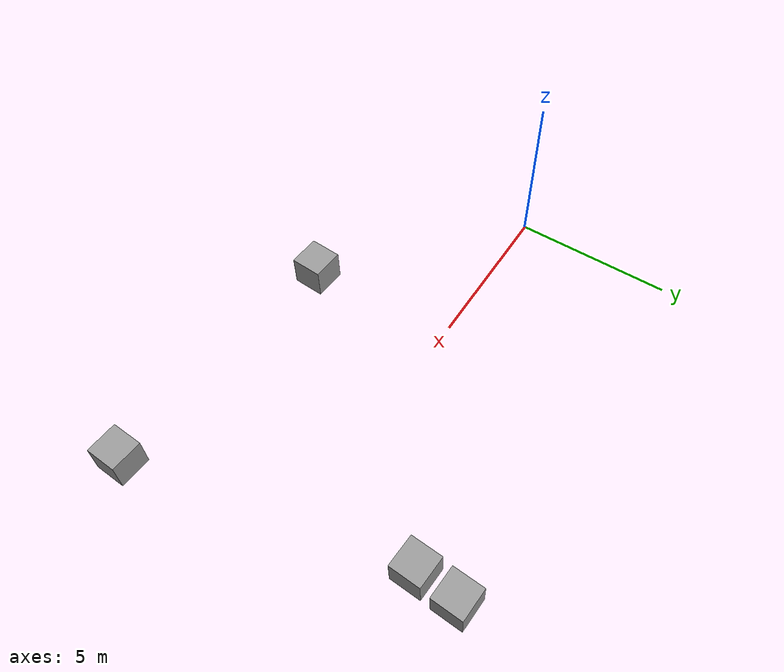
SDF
<sdf version="1.6">
 <world name="default">
  <light name="sun" type="directional">
   <cast_shadows>0</cast_shadows>
   <pose>0 0 10 0 -0 0</pose>
   <diffuse>0.8 0.8 0.8 1</diffuse>
   <specular>0.1 0.1 0.1 1</specular>
   <attenuation>
    <range>1000</range>
    <constant>0.9</constant>
    <linear>0.01</linear>
    <quadratic>0.001</quadratic>
   </attenuation>
   <direction>-0.5 0.5 -1</direction>
  </light>
  <gravity>0 0 -9.8</gravity>
  <magnetic_field>6e-06 2.3e-05 -4.2e-05</magnetic_field>
  <atmosphere type="adiabatic"/>
  <physics name="default_physics" default="0" type="ode">
   <max_step_size>0.001</max_step_size>
   <real_time_factor>1</real_time_factor>
   <real_time_update_rate>1000</real_time_update_rate>
  </physics>
  <scene><ambient>0.4 0.4 0.4 1</ambient><background>0.7 0.7 0.7 1</background><shadows>1</shadows></scene>
  <spherical_coordinates>
   <surface_model>EARTH_WGS84</surface_model>
   <latitude_deg>0</latitude_deg>
   <longitude_deg>0</longitude_deg>
   <elevation>0</elevation>
   <heading_deg>0</heading_deg>
  </spherical_coordinates>
  <model name="unit_box_clone">
   <pose>12.3591 4.69398 0.525937 4e-05 0.053278 -0.058172</pose>
   <link name="link">
    <inertial>
     <mass>1</mass>
     <inertia>
      <ixx>0.166667</ixx>
      <ixy>0</ixy>
      <ixz>0</ixz>
      <iyy>0.166667</iyy>
      <iyz>0</iyz>
      <izz>0.166667</izz>
     </inertia>
    </inertial>
    <collision name="collision"><geometry><box><size>1 1 1</size></box></geometry></collision>
    <visual name="visual">
     <geometry><box><size>1 1 1</size></box></geometry>
     <material>
      <script><name>Gazebo/Grey</name><uri>file://media/materials/scripts/gazebo.material</uri></script>
     </material>
    </visual>
   </link>
  </model>
  <model name="unit_box_clone_clone">
   <pose>12.2402 3.37685 0.513268 -3.8e-05 0.026883 -0.057384</pose>
   <link name="link">
    <inertial>
     <mass>1</mass>
     <inertia>
      <ixx>0.166667</ixx>
      <ixy>0</ixy>
      <ixz>0</ixz>
      <iyy>0.166667</iyy>
      <iyz>0</iyz>
      <izz>0.166667</izz>
     </inertia>
    </inertial>
    <collision name="collision"><geometry><box><size>1 1 1</size></box></geometry></collision>
    <visual name="visual">
     <geometry><box><size>1 1 1</size></box></geometry>
     <material>
      <script><name>Gazebo/Grey</name><uri>file://media/materials/scripts/gazebo.material</uri></script>
     </material>
    </visual>
   </link>
  </model>
  <model name="unit_box_clone_clone_0">
   <pose>5.56504 -4.6353 0.500006 -5e-06 -6e-06 -0.058584</pose>
   <link name="link">
    <inertial>
     <mass>1</mass>
     <inertia>
      <ixx>0.166667</ixx>
      <ixy>0</ixy>
      <ixz>0</ixz>
      <iyy>0.166667</iyy>
      <iyz>0</iyz>
      <izz>0.166667</izz>
     </inertia>
    </inertial>
    <collision name="collision"><geometry><box><size>1 1 1</size></box></geometry></collision>
    <visual name="visual">
     <geometry><box><size>1 1 1</size></box></geometry>
     <material>
      <script><name>Gazebo/Grey</name><uri>file://media/materials/scripts/gazebo.material</uri></script>
     </material>
    </visual>
   </link>
  </model>
  <model name="unit_box_clone_clone_1">
   <pose>13.9702 -5.30448 0.499993 -5e-06 -2e-06 -0.05857</pose>
   <link name="link">
    <inertial>
     <mass>1</mass>
     <inertia>
      <ixx>0.166667</ixx>
      <ixy>0</ixy>
      <ixz>0</ixz>
      <iyy>0.166667</iyy>
      <iyz>0</iyz>
      <izz>0.166667</izz>
     </inertia>
    </inertial>
    <collision name="collision"><geometry><box><size>1 1 1</size></box></geometry></collision>
    <visual name="visual">
     <geometry><box><size>1 1 1</size></box></geometry>
     <material>
      <script><name>Gazebo/Grey</name><uri>file://media/materials/scripts/gazebo.material</uri></script>
     </material>
    </visual>
   </link>
  </model>
 </world>
</sdf>
